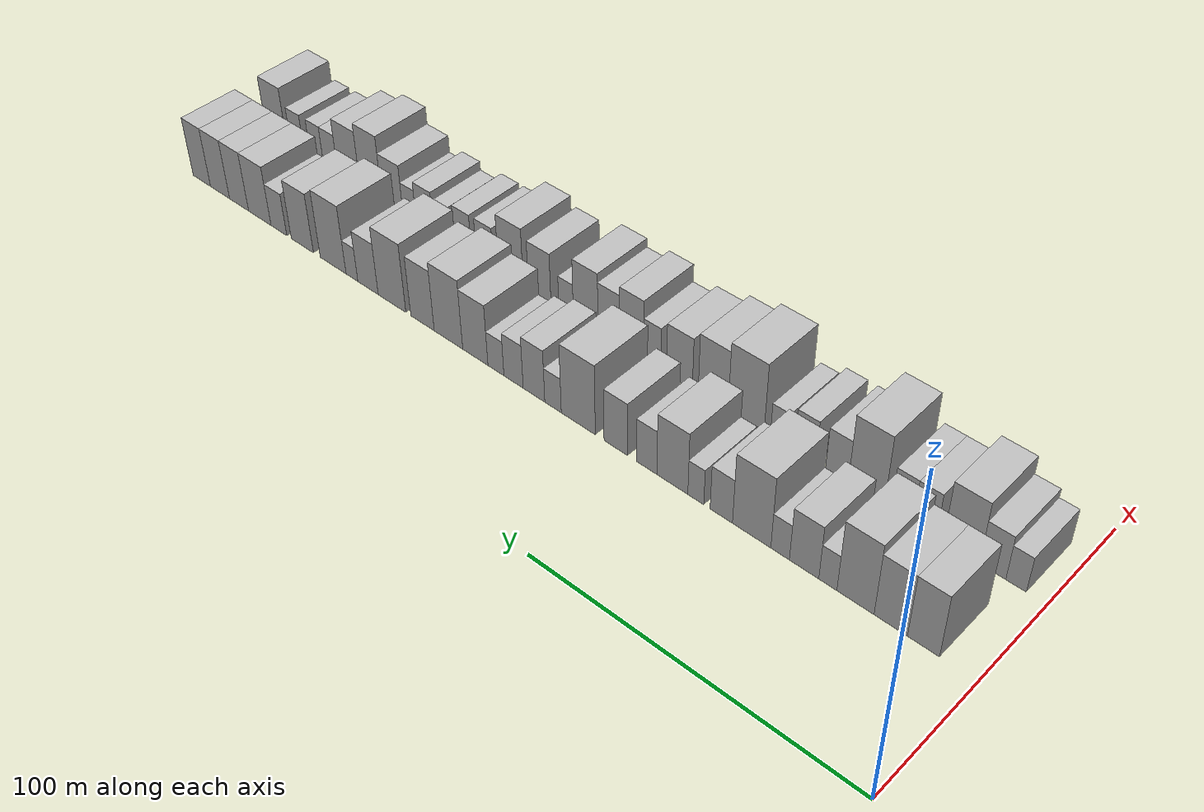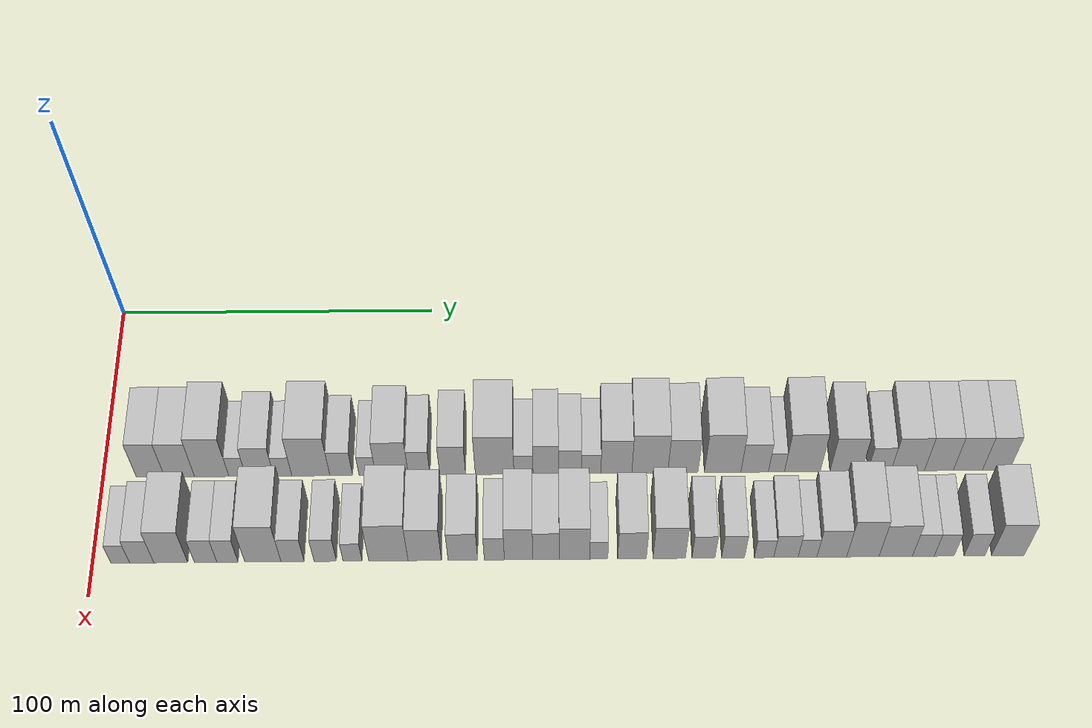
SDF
<sdf version="1.6">
 <world name="default">
  <model name="building_35">
   <static>1</static>
   <pose>50.0000 14.6316 0 0.000000 0.000000 0.000000</pose>
   <link name="link">
    <pose>0 0 10.50 0 0 0</pose>
    <collision name="collision"><geometry><box><size>20.0000 8.7028 21.0000</size></box></geometry></collision>
    <visual name="visual">
     <cast_shadows>0</cast_shadows>
     <geometry><box><size>20.0000 8.7028 21.0000</size></box></geometry>
     <material>
      <script>
       <uri>model://HANNAS_wall/materials/scripts</uri>
       <uri>model://HANNAS_wall/materials/textures</uri>
       <name>vrc/HANNAS_wall</name>
      </script>
     </material>
    </visual>
   </link>
  </model>
  <model name="building_36">
   <static>1</static>
   <pose>50.0000 23.6154 0 0.000000 0.000000 0.000000</pose>
   <link name="link">
    <pose>0 0 10.50 0 0 0</pose>
    <collision name="collision"><geometry><box><size>20.0000 9.2649 21.0000</size></box></geometry></collision>
    <visual name="visual">
     <cast_shadows>0</cast_shadows>
     <geometry><box><size>20.0000 9.2649 21.0000</size></box></geometry>
     <material>
      <script>
       <uri>model://HANNAS_wall/materials/scripts</uri>
       <uri>model://HANNAS_wall/materials/textures</uri>
       <name>vrc/HANNAS_wall</name>
      </script>
     </material>
    </visual>
   </link>
  </model>
  <model name="building_37">
   <static>1</static>
   <pose>50.0000 33.5386 0 0.000000 0.000000 0.000000</pose>
   <link name="link">
    <pose>0 0 12.00 0 0 0</pose>
    <collision name="collision"><geometry><box><size>20.0000 10.5815 24.0000</size></box></geometry></collision>
    <visual name="visual">
     <cast_shadows>0</cast_shadows>
     <geometry><box><size>20.0000 10.5815 24.0000</size></box></geometry>
     <material>
      <script>
       <uri>model://HANNAS_wall/materials/scripts</uri>
       <uri>model://HANNAS_wall/materials/textures</uri>
       <name>vrc/HANNAS_wall</name>
      </script>
     </material>
    </visual>
   </link>
  </model>
  <model name="building_38">
   <static>1</static>
   <pose>50.0000 41.4496 0 0.000000 0.000000 0.000000</pose>
   <link name="link">
    <pose>0 0 6.00 0 0 0</pose>
    <collision name="collision"><geometry><box><size>20.0000 5.2403 12.0000</size></box></geometry></collision>
    <visual name="visual">
     <cast_shadows>0</cast_shadows>
     <geometry><box><size>20.0000 5.2403 12.0000</size></box></geometry>
     <material>
      <script>
       <uri>model://HANNAS_wall/materials/scripts</uri>
       <uri>model://HANNAS_wall/materials/textures</uri>
       <name>vrc/HANNAS_wall</name>
      </script>
     </material>
    </visual>
   </link>
  </model>
  <model name="building_39">
   <static>1</static>
   <pose>50.0000 48.4071 0 0.000000 0.000000 0.000000</pose>
   <link name="link">
    <pose>0 0 9.00 0 0 0</pose>
    <collision name="collision"><geometry><box><size>20.0000 8.6749 18.0000</size></box></geometry></collision>
    <visual name="visual">
     <cast_shadows>0</cast_shadows>
     <geometry><box><size>20.0000 8.6749 18.0000</size></box></geometry>
     <material>
      <script>
       <uri>model://HANNAS_wall/materials/scripts</uri>
       <uri>model://HANNAS_wall/materials/textures</uri>
       <name>vrc/HANNAS_wall</name>
      </script>
     </material>
    </visual>
   </link>
  </model>
  <model name="building_40">
   <static>1</static>
   <pose>50.0000 55.5318 0 0.000000 0.000000 0.000000</pose>
   <link name="link">
    <pose>0 0 6.00 0 0 0</pose>
    <collision name="collision"><geometry><box><size>20.0000 5.5745 12.0000</size></box></geometry></collision>
    <visual name="visual">
     <cast_shadows>0</cast_shadows>
     <geometry><box><size>20.0000 5.5745 12.0000</size></box></geometry>
     <material>
      <script>
       <uri>model://HANNAS_wall/materials/scripts</uri>
       <uri>model://HANNAS_wall/materials/textures</uri>
       <name>vrc/HANNAS_wall</name>
      </script>
     </material>
    </visual>
   </link>
  </model>
  <model name="building_41">
   <static>1</static>
   <pose>50.0000 64.1976 0 0.000000 0.000000 0.000000</pose>
   <link name="link">
    <pose>0 0 12.00 0 0 0</pose>
    <collision name="collision"><geometry><box><size>20.0000 11.7571 24.0000</size></box></geometry></collision>
    <visual name="visual">
     <cast_shadows>0</cast_shadows>
     <geometry><box><size>20.0000 11.7571 24.0000</size></box></geometry>
     <material>
      <script>
       <uri>model://HANNAS_wall/materials/scripts</uri>
       <uri>model://HANNAS_wall/materials/textures</uri>
       <name>vrc/HANNAS_wall</name>
      </script>
     </material>
    </visual>
   </link>
  </model>
  <model name="building_42">
   <static>1</static>
   <pose>50.0000 73.5906 0 0.000000 0.000000 0.000000</pose>
   <link name="link">
    <pose>0 0 7.50 0 0 0</pose>
    <collision name="collision"><geometry><box><size>20.0000 7.0291 15.0000</size></box></geometry></collision>
    <visual name="visual">
     <cast_shadows>0</cast_shadows>
     <geometry><box><size>20.0000 7.0291 15.0000</size></box></geometry>
     <material>
      <script>
       <uri>model://HANNAS_wall/materials/scripts</uri>
       <uri>model://HANNAS_wall/materials/textures</uri>
       <name>vrc/HANNAS_wall</name>
      </script>
     </material>
    </visual>
   </link>
  </model>
  <model name="building_43">
   <static>1</static>
   <pose>50.0000 81.6611 0 0.000000 0.000000 0.000000</pose>
   <link name="link">
    <pose>0 0 6.00 0 0 0</pose>
    <collision name="collision"><geometry><box><size>20.0000 5.1118 12.0000</size></box></geometry></collision>
    <visual name="visual">
     <cast_shadows>0</cast_shadows>
     <geometry><box><size>20.0000 5.1118 12.0000</size></box></geometry>
     <material>
      <script>
       <uri>model://HANNAS_wall/materials/scripts</uri>
       <uri>model://HANNAS_wall/materials/textures</uri>
       <name>vrc/HANNAS_wall</name>
      </script>
     </material>
    </visual>
   </link>
  </model>
  <model name="building_44">
   <static>1</static>
   <pose>50.0000 89.2601 0 0.000000 0.000000 0.000000</pose>
   <link name="link">
    <pose>0 0 10.50 0 0 0</pose>
    <collision name="collision"><geometry><box><size>20.0000 10.0862 21.0000</size></box></geometry></collision>
    <visual name="visual">
     <cast_shadows>0</cast_shadows>
     <geometry><box><size>20.0000 10.0862 21.0000</size></box></geometry>
     <material>
      <script>
       <uri>model://HANNAS_wall/materials/scripts</uri>
       <uri>model://HANNAS_wall/materials/textures</uri>
       <name>vrc/HANNAS_wall</name>
      </script>
     </material>
    </visual>
   </link>
  </model>
  <model name="building_45">
   <static>1</static>
   <pose>50.0000 97.6707 0 0.000000 0.000000 0.000000</pose>
   <link name="link">
    <pose>0 0 7.50 0 0 0</pose>
    <collision name="collision"><geometry><box><size>20.0000 6.7349 15.0000</size></box></geometry></collision>
    <visual name="visual">
     <cast_shadows>0</cast_shadows>
     <geometry><box><size>20.0000 6.7349 15.0000</size></box></geometry>
     <material>
      <script>
       <uri>model://HANNAS_wall/materials/scripts</uri>
       <uri>model://HANNAS_wall/materials/textures</uri>
       <name>vrc/HANNAS_wall</name>
      </script>
     </material>
    </visual>
   </link>
  </model>
  <model name="building_46">
   <static>1</static>
   <pose>50.0000 108.0494 0 0.000000 0.000000 0.000000</pose>
   <link name="link">
    <pose>0 0 9.00 0 0 0</pose>
    <collision name="collision"><geometry><box><size>20.0000 8.0226 18.0000</size></box></geometry></collision>
    <visual name="visual">
     <cast_shadows>0</cast_shadows>
     <geometry><box><size>20.0000 8.0226 18.0000</size></box></geometry>
     <material>
      <script>
       <uri>model://HANNAS_wall/materials/scripts</uri>
       <uri>model://HANNAS_wall/materials/textures</uri>
       <name>vrc/HANNAS_wall</name>
      </script>
     </material>
    </visual>
   </link>
  </model>
  <model name="building_47">
   <static>1</static>
   <pose>50.0000 121.0334 0 0.000000 0.000000 0.000000</pose>
   <link name="link">
    <pose>0 0 12.00 0 0 0</pose>
    <collision name="collision"><geometry><box><size>20.0000 11.9454 24.0000</size></box></geometry></collision>
    <visual name="visual">
     <cast_shadows>0</cast_shadows>
     <geometry><box><size>20.0000 11.9454 24.0000</size></box></geometry>
     <material>
      <script>
       <uri>model://HANNAS_wall/materials/scripts</uri>
       <uri>model://HANNAS_wall/materials/textures</uri>
       <name>vrc/HANNAS_wall</name>
      </script>
     </material>
    </visual>
   </link>
  </model>
  <model name="building_48">
   <static>1</static>
   <pose>50.0000 129.9564 0 0.000000 0.000000 0.000000</pose>
   <link name="link">
    <pose>0 0 6.00 0 0 0</pose>
    <collision name="collision"><geometry><box><size>20.0000 5.9007 12.0000</size></box></geometry></collision>
    <visual name="visual">
     <cast_shadows>0</cast_shadows>
     <geometry><box><size>20.0000 5.9007 12.0000</size></box></geometry>
     <material>
      <script>
       <uri>model://HANNAS_wall/materials/scripts</uri>
       <uri>model://HANNAS_wall/materials/textures</uri>
       <name>vrc/HANNAS_wall</name>
      </script>
     </material>
    </visual>
   </link>
  </model>
  <model name="building_49">
   <static>1</static>
   <pose>50.0000 136.8345 0 0.000000 0.000000 0.000000</pose>
   <link name="link">
    <pose>0 0 9.00 0 0 0</pose>
    <collision name="collision"><geometry><box><size>20.0000 7.8554 18.0000</size></box></geometry></collision>
    <visual name="visual">
     <cast_shadows>0</cast_shadows>
     <geometry><box><size>20.0000 7.8554 18.0000</size></box></geometry>
     <material>
      <script>
       <uri>model://HANNAS_wall/materials/scripts</uri>
       <uri>model://HANNAS_wall/materials/textures</uri>
       <name>vrc/HANNAS_wall</name>
      </script>
     </material>
    </visual>
   </link>
  </model>
  <model name="building_50">
   <static>1</static>
   <pose>50.0000 144.3161 0 0.000000 0.000000 0.000000</pose>
   <link name="link">
    <pose>0 0 7.50 0 0 0</pose>
    <collision name="collision"><geometry><box><size>20.0000 7.1079 15.0000</size></box></geometry></collision>
    <visual name="visual">
     <cast_shadows>0</cast_shadows>
     <geometry><box><size>20.0000 7.1079 15.0000</size></box></geometry>
     <material>
      <script>
       <uri>model://HANNAS_wall/materials/scripts</uri>
       <uri>model://HANNAS_wall/materials/textures</uri>
       <name>vrc/HANNAS_wall</name>
      </script>
     </material>
    </visual>
   </link>
  </model>
  <model name="building_51">
   <static>1</static>
   <pose>50.0000 150.8622 0 0.000000 0.000000 0.000000</pose>
   <link name="link">
    <pose>0 0 6.00 0 0 0</pose>
    <collision name="collision"><geometry><box><size>20.0000 5.9843 12.0000</size></box></geometry></collision>
    <visual name="visual">
     <cast_shadows>0</cast_shadows>
     <geometry><box><size>20.0000 5.9843 12.0000</size></box></geometry>
     <material>
      <script>
       <uri>model://HANNAS_wall/materials/scripts</uri>
       <uri>model://HANNAS_wall/materials/textures</uri>
       <name>vrc/HANNAS_wall</name>
      </script>
     </material>
    </visual>
   </link>
  </model>
  <model name="building_52">
   <static>1</static>
   <pose>50.0000 158.6646 0 0.000000 0.000000 0.000000</pose>
   <link name="link">
    <pose>0 0 10.50 0 0 0</pose>
    <collision name="collision"><geometry><box><size>20.0000 9.6206 21.0000</size></box></geometry></collision>
    <visual name="visual">
     <cast_shadows>0</cast_shadows>
     <geometry><box><size>20.0000 9.6206 21.0000</size></box></geometry>
     <material>
      <script>
       <uri>model://HANNAS_wall/materials/scripts</uri>
       <uri>model://HANNAS_wall/materials/textures</uri>
       <name>vrc/HANNAS_wall</name>
      </script>
     </material>
    </visual>
   </link>
  </model>
  <model name="building_53">
   <static>1</static>
   <pose>50.0000 169.0447 0 0.000000 0.000000 0.000000</pose>
   <link name="link">
    <pose>0 0 12.00 0 0 0</pose>
    <collision name="collision"><geometry><box><size>20.0000 11.1397 24.0000</size></box></geometry></collision>
    <visual name="visual">
     <cast_shadows>0</cast_shadows>
     <geometry><box><size>20.0000 11.1397 24.0000</size></box></geometry>
     <material>
      <script>
       <uri>model://HANNAS_wall/materials/scripts</uri>
       <uri>model://HANNAS_wall/materials/textures</uri>
       <name>vrc/HANNAS_wall</name>
      </script>
     </material>
    </visual>
   </link>
  </model>
  <model name="building_54">
   <static>1</static>
   <pose>50.0000 179.2855 0 0.000000 0.000000 0.000000</pose>
   <link name="link">
    <pose>0 0 10.50 0 0 0</pose>
    <collision name="collision"><geometry><box><size>20.0000 9.3417 21.0000</size></box></geometry></collision>
    <visual name="visual">
     <cast_shadows>0</cast_shadows>
     <geometry><box><size>20.0000 9.3417 21.0000</size></box></geometry>
     <material>
      <script>
       <uri>model://HANNAS_wall/materials/scripts</uri>
       <uri>model://HANNAS_wall/materials/textures</uri>
       <name>vrc/HANNAS_wall</name>
      </script>
     </material>
    </visual>
   </link>
  </model>
  <model name="building_55">
   <static>1</static>
   <pose>50.0000 191.6050 0 0.000000 0.000000 0.000000</pose>
   <link name="link">
    <pose>0 0 12.00 0 0 0</pose>
    <collision name="collision"><geometry><box><size>20.0000 11.2973 24.0000</size></box></geometry></collision>
    <visual name="visual">
     <cast_shadows>0</cast_shadows>
     <geometry><box><size>20.0000 11.2973 24.0000</size></box></geometry>
     <material>
      <script>
       <uri>model://HANNAS_wall/materials/scripts</uri>
       <uri>model://HANNAS_wall/materials/textures</uri>
       <name>vrc/HANNAS_wall</name>
      </script>
     </material>
    </visual>
   </link>
  </model>
  <model name="building_56">
   <static>1</static>
   <pose>50.0000 201.5154 0 0.000000 0.000000 0.000000</pose>
   <link name="link">
    <pose>0 0 9.00 0 0 0</pose>
    <collision name="collision"><geometry><box><size>20.0000 8.5236 18.0000</size></box></geometry></collision>
    <visual name="visual">
     <cast_shadows>0</cast_shadows>
     <geometry><box><size>20.0000 8.5236 18.0000</size></box></geometry>
     <material>
      <script>
       <uri>model://HANNAS_wall/materials/scripts</uri>
       <uri>model://HANNAS_wall/materials/textures</uri>
       <name>vrc/HANNAS_wall</name>
      </script>
     </material>
    </visual>
   </link>
  </model>
  <model name="building_57">
   <static>1</static>
   <pose>50.0000 208.2696 0 0.000000 0.000000 0.000000</pose>
   <link name="link">
    <pose>0 0 6.00 0 0 0</pose>
    <collision name="collision"><geometry><box><size>20.0000 4.9847 12.0000</size></box></geometry></collision>
    <visual name="visual">
     <cast_shadows>0</cast_shadows>
     <geometry><box><size>20.0000 4.9847 12.0000</size></box></geometry>
     <material>
      <script>
       <uri>model://HANNAS_wall/materials/scripts</uri>
       <uri>model://HANNAS_wall/materials/textures</uri>
       <name>vrc/HANNAS_wall</name>
      </script>
     </material>
    </visual>
   </link>
  </model>
  <model name="building_58">
   <static>1</static>
   <pose>50.0000 216.3229 0 0.000000 0.000000 0.000000</pose>
   <link name="link">
    <pose>0 0 12.00 0 0 0</pose>
    <collision name="collision"><geometry><box><size>20.0000 11.1220 24.0000</size></box></geometry></collision>
    <visual name="visual">
     <cast_shadows>0</cast_shadows>
     <geometry><box><size>20.0000 11.1220 24.0000</size></box></geometry>
     <material>
      <script>
       <uri>model://HANNAS_wall/materials/scripts</uri>
       <uri>model://HANNAS_wall/materials/textures</uri>
       <name>vrc/HANNAS_wall</name>
      </script>
     </material>
    </visual>
   </link>
  </model>
  <model name="building_59">
   <static>1</static>
   <pose>50.0000 229.7855 0 0.000000 0.000000 0.000000</pose>
   <link name="link">
    <pose>0 0 10.50 0 0 0</pose>
    <collision name="collision"><geometry><box><size>20.0000 9.8032 21.0000</size></box></geometry></collision>
    <visual name="visual">
     <cast_shadows>0</cast_shadows>
     <geometry><box><size>20.0000 9.8032 21.0000</size></box></geometry>
     <material>
      <script>
       <uri>model://HANNAS_wall/materials/scripts</uri>
       <uri>model://HANNAS_wall/materials/textures</uri>
       <name>vrc/HANNAS_wall</name>
      </script>
     </material>
    </visual>
   </link>
  </model>
  <model name="building_60">
   <static>1</static>
   <pose>50.0000 240.2596 0 0.000000 0.000000 0.000000</pose>
   <link name="link">
    <pose>0 0 7.50 0 0 0</pose>
    <collision name="collision"><geometry><box><size>20.0000 7.1451 15.0000</size></box></geometry></collision>
    <visual name="visual">
     <cast_shadows>0</cast_shadows>
     <geometry><box><size>20.0000 7.1451 15.0000</size></box></geometry>
     <material>
      <script>
       <uri>model://HANNAS_wall/materials/scripts</uri>
       <uri>model://HANNAS_wall/materials/textures</uri>
       <name>vrc/HANNAS_wall</name>
      </script>
     </material>
    </visual>
   </link>
  </model>
  <model name="building_61">
   <static>1</static>
   <pose>50.0000 249.0057 0 0.000000 0.000000 0.000000</pose>
   <link name="link">
    <pose>0 0 10.50 0 0 0</pose>
    <collision name="collision"><geometry><box><size>20.0000 10.3470 21.0000</size></box></geometry></collision>
    <visual name="visual">
     <cast_shadows>0</cast_shadows>
     <geometry><box><size>20.0000 10.3470 21.0000</size></box></geometry>
     <material>
      <script>
       <uri>model://HANNAS_wall/materials/scripts</uri>
       <uri>model://HANNAS_wall/materials/textures</uri>
       <name>vrc/HANNAS_wall</name>
      </script>
     </material>
    </visual>
   </link>
  </model>
  <model name="building_62">
   <static>1</static>
   <pose>50.0000 258.6592 0 0.000000 0.000000 0.000000</pose>
   <link name="link">
    <pose>0 0 10.50 0 0 0</pose>
    <collision name="collision"><geometry><box><size>20.0000 8.9600 21.0000</size></box></geometry></collision>
    <visual name="visual">
     <cast_shadows>0</cast_shadows>
     <geometry><box><size>20.0000 8.9600 21.0000</size></box></geometry>
     <material>
      <script>
       <uri>model://HANNAS_wall/materials/scripts</uri>
       <uri>model://HANNAS_wall/materials/textures</uri>
       <name>vrc/HANNAS_wall</name>
      </script>
     </material>
    </visual>
   </link>
  </model>
  <model name="building_63">
   <static>1</static>
   <pose>50.0000 267.6612 0 0.000000 0.000000 0.000000</pose>
   <link name="link">
    <pose>0 0 10.50 0 0 0</pose>
    <collision name="collision"><geometry><box><size>20.0000 9.0440 21.0000</size></box></geometry></collision>
    <visual name="visual">
     <cast_shadows>0</cast_shadows>
     <geometry><box><size>20.0000 9.0440 21.0000</size></box></geometry>
     <material>
      <script>
       <uri>model://HANNAS_wall/materials/scripts</uri>
       <uri>model://HANNAS_wall/materials/textures</uri>
       <name>vrc/HANNAS_wall</name>
      </script>
     </material>
    </visual>
   </link>
  </model>
  <model name="building_64">
   <static>1</static>
   <pose>50.0000 276.3855 0 0.000000 0.000000 0.000000</pose>
   <link name="link">
    <pose>0 0 10.50 0 0 0</pose>
    <collision name="collision"><geometry><box><size>20.0000 8.4046 21.0000</size></box></geometry></collision>
    <visual name="visual">
     <cast_shadows>0</cast_shadows>
     <geometry><box><size>20.0000 8.4046 21.0000</size></box></geometry>
     <material>
      <script>
       <uri>model://HANNAS_wall/materials/scripts</uri>
       <uri>model://HANNAS_wall/materials/textures</uri>
       <name>vrc/HANNAS_wall</name>
      </script>
     </material>
    </visual>
   </link>
  </model>
  <model name="building_92">
   <static>1</static>
   <pose>79.0000 8.4908 0 0.000000 0.000000 0.000000</pose>
   <link name="link">
    <pose>0 0 6.00 0 0 0</pose>
    <collision name="collision"><geometry><box><size>20.0000 5.6052 12.0000</size></box></geometry></collision>
    <visual name="visual">
     <cast_shadows>0</cast_shadows>
     <geometry><box><size>20.0000 5.6052 12.0000</size></box></geometry>
     <material>
      <script>
       <uri>model://HANNAS_wall/materials/scripts</uri>
       <uri>model://HANNAS_wall/materials/textures</uri>
       <name>vrc/HANNAS_wall</name>
      </script>
     </material>
    </visual>
   </link>
  </model>
  <model name="building_93">
   <static>1</static>
   <pose>79.0000 14.9302 0 0.000000 0.000000 0.000000</pose>
   <link name="link">
    <pose>0 0 7.50 0 0 0</pose>
    <collision name="collision"><geometry><box><size>20.0000 7.2737 15.0000</size></box></geometry></collision>
    <visual name="visual">
     <cast_shadows>0</cast_shadows>
     <geometry><box><size>20.0000 7.2737 15.0000</size></box></geometry>
     <material>
      <script>
       <uri>model://HANNAS_wall/materials/scripts</uri>
       <uri>model://HANNAS_wall/materials/textures</uri>
       <name>vrc/HANNAS_wall</name>
      </script>
     </material>
    </visual>
   </link>
  </model>
  <model name="building_94">
   <static>1</static>
   <pose>79.0000 23.6726 0 0.000000 0.000000 0.000000</pose>
   <link name="link">
    <pose>0 0 10.50 0 0 0</pose>
    <collision name="collision"><geometry><box><size>20.0000 10.2110 21.0000</size></box></geometry></collision>
    <visual name="visual">
     <cast_shadows>0</cast_shadows>
     <geometry><box><size>20.0000 10.2110 21.0000</size></box></geometry>
     <material>
      <script>
       <uri>model://HANNAS_wall/materials/scripts</uri>
       <uri>model://HANNAS_wall/materials/textures</uri>
       <name>vrc/HANNAS_wall</name>
      </script>
     </material>
    </visual>
   </link>
  </model>
  <model name="building_95">
   <static>1</static>
   <pose>79.0000 34.1572 0 0.000000 0.000000 0.000000</pose>
   <link name="link">
    <pose>0 0 7.50 0 0 0</pose>
    <collision name="collision"><geometry><box><size>20.0000 6.7583 15.0000</size></box></geometry></collision>
    <visual name="visual">
     <cast_shadows>0</cast_shadows>
     <geometry><box><size>20.0000 6.7583 15.0000</size></box></geometry>
     <material>
      <script>
       <uri>model://HANNAS_wall/materials/scripts</uri>
       <uri>model://HANNAS_wall/materials/textures</uri>
       <name>vrc/HANNAS_wall</name>
      </script>
     </material>
    </visual>
   </link>
  </model>
  <model name="building_96">
   <static>1</static>
   <pose>79.0000 40.7348 0 0.000000 0.000000 0.000000</pose>
   <link name="link">
    <pose>0 0 7.50 0 0 0</pose>
    <collision name="collision"><geometry><box><size>20.0000 6.3968 15.0000</size></box></geometry></collision>
    <visual name="visual">
     <cast_shadows>0</cast_shadows>
     <geometry><box><size>20.0000 6.3968 15.0000</size></box></geometry>
     <material>
      <script>
       <uri>model://HANNAS_wall/materials/scripts</uri>
       <uri>model://HANNAS_wall/materials/textures</uri>
       <name>vrc/HANNAS_wall</name>
      </script>
     </material>
    </visual>
   </link>
  </model>
  <model name="building_97">
   <static>1</static>
   <pose>79.0000 51.3999 0 0.000000 0.000000 0.000000</pose>
   <link name="link">
    <pose>0 0 12.00 0 0 0</pose>
    <collision name="collision"><geometry><box><size>20.0000 10.9334 24.0000</size></box></geometry></collision>
    <visual name="visual">
     <cast_shadows>0</cast_shadows>
     <geometry><box><size>20.0000 10.9334 24.0000</size></box></geometry>
     <material>
      <script>
       <uri>model://HANNAS_wall/materials/scripts</uri>
       <uri>model://HANNAS_wall/materials/textures</uri>
       <name>vrc/HANNAS_wall</name>
      </script>
     </material>
    </visual>
   </link>
  </model>
  <model name="building_98">
   <static>1</static>
   <pose>79.0000 60.3516 0 0.000000 0.000000 0.000000</pose>
   <link name="link">
    <pose>0 0 7.50 0 0 0</pose>
    <collision name="collision"><geometry><box><size>20.0000 6.9698 15.0000</size></box></geometry></collision>
    <visual name="visual">
     <cast_shadows>0</cast_shadows>
     <geometry><box><size>20.0000 6.9698 15.0000</size></box></geometry>
     <material>
      <script>
       <uri>model://HANNAS_wall/materials/scripts</uri>
       <uri>model://HANNAS_wall/materials/textures</uri>
       <name>vrc/HANNAS_wall</name>
      </script>
     </material>
    </visual>
   </link>
  </model>
  <model name="building_99">
   <static>1</static>
   <pose>79.0000 70.1922 0 0.000000 0.000000 0.000000</pose>
   <link name="link">
    <pose>0 0 7.50 0 0 0</pose>
    <collision name="collision"><geometry><box><size>20.0000 6.7116 15.0000</size></box></geometry></collision>
    <visual name="visual">
     <cast_shadows>0</cast_shadows>
     <geometry><box><size>20.0000 6.7116 15.0000</size></box></geometry>
     <material>
      <script>
       <uri>model://HANNAS_wall/materials/scripts</uri>
       <uri>model://HANNAS_wall/materials/textures</uri>
       <name>vrc/HANNAS_wall</name>
      </script>
     </material>
    </visual>
   </link>
  </model>
  <model name="building_100">
   <static>1</static>
   <pose>79.0000 78.4178 0 0.000000 0.000000 0.000000</pose>
   <link name="link">
    <pose>0 0 6.00 0 0 0</pose>
    <collision name="collision"><geometry><box><size>20.0000 5.7395 12.0000</size></box></geometry></collision>
    <visual name="visual">
     <cast_shadows>0</cast_shadows>
     <geometry><box><size>20.0000 5.7395 12.0000</size></box></geometry>
     <material>
      <script>
       <uri>model://HANNAS_wall/materials/scripts</uri>
       <uri>model://HANNAS_wall/materials/textures</uri>
       <name>vrc/HANNAS_wall</name>
      </script>
     </material>
    </visual>
   </link>
  </model>
  <model name="building_101">
   <static>1</static>
   <pose>79.0000 89.2218 0 0.000000 0.000000 0.000000</pose>
   <link name="link">
    <pose>0 0 12.00 0 0 0</pose>
    <collision name="collision"><geometry><box><size>20.0000 11.8686 24.0000</size></box></geometry></collision>
    <visual name="visual">
     <cast_shadows>0</cast_shadows>
     <geometry><box><size>20.0000 11.8686 24.0000</size></box></geometry>
     <material>
      <script>
       <uri>model://HANNAS_wall/materials/scripts</uri>
       <uri>model://HANNAS_wall/materials/textures</uri>
       <name>vrc/HANNAS_wall</name>
      </script>
     </material>
    </visual>
   </link>
  </model>
  <model name="building_102">
   <static>1</static>
   <pose>79.0000 100.1863 0 0.000000 0.000000 0.000000</pose>
   <link name="link">
    <pose>0 0 10.50 0 0 0</pose>
    <collision name="collision"><geometry><box><size>20.0000 10.0603 21.0000</size></box></geometry></collision>
    <visual name="visual">
     <cast_shadows>0</cast_shadows>
     <geometry><box><size>20.0000 10.0603 21.0000</size></box></geometry>
     <material>
      <script>
       <uri>model://HANNAS_wall/materials/scripts</uri>
       <uri>model://HANNAS_wall/materials/textures</uri>
       <name>vrc/HANNAS_wall</name>
      </script>
     </material>
    </visual>
   </link>
  </model>
  <model name="building_103">
   <static>1</static>
   <pose>79.0000 111.6802 0 0.000000 0.000000 0.000000</pose>
   <link name="link">
    <pose>0 0 9.00 0 0 0</pose>
    <collision name="collision"><geometry><box><size>20.0000 8.9275 18.0000</size></box></geometry></collision>
    <visual name="visual">
     <cast_shadows>0</cast_shadows>
     <geometry><box><size>20.0000 8.9275 18.0000</size></box></geometry>
     <material>
      <script>
       <uri>model://HANNAS_wall/materials/scripts</uri>
       <uri>model://HANNAS_wall/materials/textures</uri>
       <name>vrc/HANNAS_wall</name>
      </script>
     </material>
    </visual>
   </link>
  </model>
  <model name="building_104">
   <static>1</static>
   <pose>79.0000 121.1750 0 0.000000 0.000000 0.000000</pose>
   <link name="link">
    <pose>0 0 7.50 0 0 0</pose>
    <collision name="collision"><geometry><box><size>20.0000 6.0622 15.0000</size></box></geometry></collision>
    <visual name="visual">
     <cast_shadows>0</cast_shadows>
     <geometry><box><size>20.0000 6.0622 15.0000</size></box></geometry>
     <material>
      <script>
       <uri>model://HANNAS_wall/materials/scripts</uri>
       <uri>model://HANNAS_wall/materials/textures</uri>
       <name>vrc/HANNAS_wall</name>
      </script>
     </material>
    </visual>
   </link>
  </model>
  <model name="building_105">
   <static>1</static>
   <pose>79.0000 128.4859 0 0.000000 0.000000 0.000000</pose>
   <link name="link">
    <pose>0 0 10.50 0 0 0</pose>
    <collision name="collision"><geometry><box><size>20.0000 8.5597 21.0000</size></box></geometry></collision>
    <visual name="visual">
     <cast_shadows>0</cast_shadows>
     <geometry><box><size>20.0000 8.5597 21.0000</size></box></geometry>
     <material>
      <script>
       <uri>model://HANNAS_wall/materials/scripts</uri>
       <uri>model://HANNAS_wall/materials/textures</uri>
       <name>vrc/HANNAS_wall</name>
      </script>
     </material>
    </visual>
   </link>
  </model>
  <model name="building_106">
   <static>1</static>
   <pose>79.0000 136.7175 0 0.000000 0.000000 0.000000</pose>
   <link name="link">
    <pose>0 0 9.00 0 0 0</pose>
    <collision name="collision"><geometry><box><size>20.0000 7.9034 18.0000</size></box></geometry></collision>
    <visual name="visual">
     <cast_shadows>0</cast_shadows>
     <geometry><box><size>20.0000 7.9034 18.0000</size></box></geometry>
     <material>
      <script>
       <uri>model://HANNAS_wall/materials/scripts</uri>
       <uri>model://HANNAS_wall/materials/textures</uri>
       <name>vrc/HANNAS_wall</name>
      </script>
     </material>
    </visual>
   </link>
  </model>
  <model name="building_107">
   <static>1</static>
   <pose>79.0000 145.2664 0 0.000000 0.000000 0.000000</pose>
   <link name="link">
    <pose>0 0 10.50 0 0 0</pose>
    <collision name="collision"><geometry><box><size>20.0000 9.1945 21.0000</size></box></geometry></collision>
    <visual name="visual">
     <cast_shadows>0</cast_shadows>
     <geometry><box><size>20.0000 9.1945 21.0000</size></box></geometry>
     <material>
      <script>
       <uri>model://HANNAS_wall/materials/scripts</uri>
       <uri>model://HANNAS_wall/materials/textures</uri>
       <name>vrc/HANNAS_wall</name>
      </script>
     </material>
    </visual>
   </link>
  </model>
  <model name="building_108">
   <static>1</static>
   <pose>79.0000 152.6156 0 0.000000 0.000000 0.000000</pose>
   <link name="link">
    <pose>0 0 6.00 0 0 0</pose>
    <collision name="collision"><geometry><box><size>20.0000 5.5038 12.0000</size></box></geometry></collision>
    <visual name="visual">
     <cast_shadows>0</cast_shadows>
     <geometry><box><size>20.0000 5.5038 12.0000</size></box></geometry>
     <material>
      <script>
       <uri>model://HANNAS_wall/materials/scripts</uri>
       <uri>model://HANNAS_wall/materials/textures</uri>
       <name>vrc/HANNAS_wall</name>
      </script>
     </material>
    </visual>
   </link>
  </model>
  <model name="building_109">
   <static>1</static>
   <pose>79.0000 162.6895 0 0.000000 0.000000 0.000000</pose>
   <link name="link">
    <pose>0 0 9.00 0 0 0</pose>
    <collision name="collision"><geometry><box><size>20.0000 8.6441 18.0000</size></box></geometry></collision>
    <visual name="visual">
     <cast_shadows>0</cast_shadows>
     <geometry><box><size>20.0000 8.6441 18.0000</size></box></geometry>
     <material>
      <script>
       <uri>model://HANNAS_wall/materials/scripts</uri>
       <uri>model://HANNAS_wall/materials/textures</uri>
       <name>vrc/HANNAS_wall</name>
      </script>
     </material>
    </visual>
   </link>
  </model>
  <model name="building_110">
   <static>1</static>
   <pose>79.0000 173.9003 0 0.000000 0.000000 0.000000</pose>
   <link name="link">
    <pose>0 0 10.50 0 0 0</pose>
    <collision name="collision"><geometry><box><size>20.0000 9.7776 21.0000</size></box></geometry></collision>
    <visual name="visual">
     <cast_shadows>0</cast_shadows>
     <geometry><box><size>20.0000 9.7776 21.0000</size></box></geometry>
     <material>
      <script>
       <uri>model://HANNAS_wall/materials/scripts</uri>
       <uri>model://HANNAS_wall/materials/textures</uri>
       <name>vrc/HANNAS_wall</name>
      </script>
     </material>
    </visual>
   </link>
  </model>
  <model name="building_111">
   <static>1</static>
   <pose>79.0000 184.2559 0 0.000000 0.000000 0.000000</pose>
   <link name="link">
    <pose>0 0 7.50 0 0 0</pose>
    <collision name="collision"><geometry><box><size>20.0000 6.9335 15.0000</size></box></geometry></collision>
    <visual name="visual">
     <cast_shadows>0</cast_shadows>
     <geometry><box><size>20.0000 6.9335 15.0000</size></box></geometry>
     <material>
      <script>
       <uri>model://HANNAS_wall/materials/scripts</uri>
       <uri>model://HANNAS_wall/materials/textures</uri>
       <name>vrc/HANNAS_wall</name>
      </script>
     </material>
    </visual>
   </link>
  </model>
  <model name="building_112">
   <static>1</static>
   <pose>79.0000 193.1860 0 0.000000 0.000000 0.000000</pose>
   <link name="link">
    <pose>0 0 7.50 0 0 0</pose>
    <collision name="collision"><geometry><box><size>20.0000 6.9267 15.0000</size></box></geometry></collision>
    <visual name="visual">
     <cast_shadows>0</cast_shadows>
     <geometry><box><size>20.0000 6.9267 15.0000</size></box></geometry>
     <material>
      <script>
       <uri>model://HANNAS_wall/materials/scripts</uri>
       <uri>model://HANNAS_wall/materials/textures</uri>
       <name>vrc/HANNAS_wall</name>
      </script>
     </material>
    </visual>
   </link>
  </model>
  <model name="building_113">
   <static>1</static>
   <pose>79.0000 202.5545 0 0.000000 0.000000 0.000000</pose>
   <link name="link">
    <pose>0 0 6.00 0 0 0</pose>
    <collision name="collision"><geometry><box><size>20.0000 5.8102 12.0000</size></box></geometry></collision>
    <visual name="visual">
     <cast_shadows>0</cast_shadows>
     <geometry><box><size>20.0000 5.8102 12.0000</size></box></geometry>
     <material>
      <script>
       <uri>model://HANNAS_wall/materials/scripts</uri>
       <uri>model://HANNAS_wall/materials/textures</uri>
       <name>vrc/HANNAS_wall</name>
      </script>
     </material>
    </visual>
   </link>
  </model>
  <model name="building_114">
   <static>1</static>
   <pose>79.0000 209.1482 0 0.000000 0.000000 0.000000</pose>
   <link name="link">
    <pose>0 0 7.50 0 0 0</pose>
    <collision name="collision"><geometry><box><size>20.0000 7.3773 15.0000</size></box></geometry></collision>
    <visual name="visual">
     <cast_shadows>0</cast_shadows>
     <geometry><box><size>20.0000 7.3773 15.0000</size></box></geometry>
     <material>
      <script>
       <uri>model://HANNAS_wall/materials/scripts</uri>
       <uri>model://HANNAS_wall/materials/textures</uri>
       <name>vrc/HANNAS_wall</name>
      </script>
     </material>
    </visual>
   </link>
  </model>
  <model name="building_115">
   <static>1</static>
   <pose>79.0000 215.6736 0 0.000000 0.000000 0.000000</pose>
   <link name="link">
    <pose>0 0 6.00 0 0 0</pose>
    <collision name="collision"><geometry><box><size>20.0000 5.6735 12.0000</size></box></geometry></collision>
    <visual name="visual">
     <cast_shadows>0</cast_shadows>
     <geometry><box><size>20.0000 5.6735 12.0000</size></box></geometry>
     <material>
      <script>
       <uri>model://HANNAS_wall/materials/scripts</uri>
       <uri>model://HANNAS_wall/materials/textures</uri>
       <name>vrc/HANNAS_wall</name>
      </script>
     </material>
    </visual>
   </link>
  </model>
  <model name="building_116">
   <static>1</static>
   <pose>79.0000 223.0074 0 0.000000 0.000000 0.000000</pose>
   <link name="link">
    <pose>0 0 9.00 0 0 0</pose>
    <collision name="collision"><geometry><box><size>20.0000 8.9941 18.0000</size></box></geometry></collision>
    <visual name="visual">
     <cast_shadows>0</cast_shadows>
     <geometry><box><size>20.0000 8.9941 18.0000</size></box></geometry>
     <material>
      <script>
       <uri>model://HANNAS_wall/materials/scripts</uri>
       <uri>model://HANNAS_wall/materials/textures</uri>
       <name>vrc/HANNAS_wall</name>
      </script>
     </material>
    </visual>
   </link>
  </model>
  <model name="building_117">
   <static>1</static>
   <pose>79.0000 232.3936 0 0.000000 0.000000 0.000000</pose>
   <link name="link">
    <pose>0 0 12.00 0 0 0</pose>
    <collision name="collision"><geometry><box><size>20.0000 9.7782 24.0000</size></box></geometry></collision>
    <visual name="visual">
     <cast_shadows>0</cast_shadows>
     <geometry><box><size>20.0000 9.7782 24.0000</size></box></geometry>
     <material>
      <script>
       <uri>model://HANNAS_wall/materials/scripts</uri>
       <uri>model://HANNAS_wall/materials/textures</uri>
       <name>vrc/HANNAS_wall</name>
      </script>
     </material>
    </visual>
   </link>
  </model>
  <model name="building_118">
   <static>1</static>
   <pose>79.0000 242.3354 0 0.000000 0.000000 0.000000</pose>
   <link name="link">
    <pose>0 0 10.50 0 0 0</pose>
    <collision name="collision"><geometry><box><size>20.0000 10.1055 21.0000</size></box></geometry></collision>
    <visual name="visual">
     <cast_shadows>0</cast_shadows>
     <geometry><box><size>20.0000 10.1055 21.0000</size></box></geometry>
     <material>
      <script>
       <uri>model://HANNAS_wall/materials/scripts</uri>
       <uri>model://HANNAS_wall/materials/textures</uri>
       <name>vrc/HANNAS_wall</name>
      </script>
     </material>
    </visual>
   </link>
  </model>
  <model name="building_119">
   <static>1</static>
   <pose>79.0000 250.6875 0 0.000000 0.000000 0.000000</pose>
   <link name="link">
    <pose>0 0 7.50 0 0 0</pose>
    <collision name="collision"><geometry><box><size>20.0000 6.5985 15.0000</size></box></geometry></collision>
    <visual name="visual">
     <cast_shadows>0</cast_shadows>
     <geometry><box><size>20.0000 6.5985 15.0000</size></box></geometry>
     <material>
      <script>
       <uri>model://HANNAS_wall/materials/scripts</uri>
       <uri>model://HANNAS_wall/materials/textures</uri>
       <name>vrc/HANNAS_wall</name>
      </script>
     </material>
    </visual>
   </link>
  </model>
  <model name="building_120">
   <static>1</static>
   <pose>79.0000 256.9940 0 0.000000 0.000000 0.000000</pose>
   <link name="link">
    <pose>0 0 7.50 0 0 0</pose>
    <collision name="collision"><geometry><box><size>20.0000 6.0145 15.0000</size></box></geometry></collision>
    <visual name="visual">
     <cast_shadows>0</cast_shadows>
     <geometry><box><size>20.0000 6.0145 15.0000</size></box></geometry>
     <material>
      <script>
       <uri>model://HANNAS_wall/materials/scripts</uri>
       <uri>model://HANNAS_wall/materials/textures</uri>
       <name>vrc/HANNAS_wall</name>
      </script>
     </material>
    </visual>
   </link>
  </model>
  <model name="building_121">
   <static>1</static>
   <pose>79.0000 266.1584 0 0.000000 0.000000 0.000000</pose>
   <link name="link">
    <pose>0 0 7.50 0 0 0</pose>
    <collision name="collision"><geometry><box><size>20.0000 6.3144 15.0000</size></box></geometry></collision>
    <visual name="visual">
     <cast_shadows>0</cast_shadows>
     <geometry><box><size>20.0000 6.3144 15.0000</size></box></geometry>
     <material>
      <script>
       <uri>model://HANNAS_wall/materials/scripts</uri>
       <uri>model://HANNAS_wall/materials/textures</uri>
       <name>vrc/HANNAS_wall</name>
      </script>
     </material>
    </visual>
   </link>
  </model>
  <model name="building_122">
   <static>1</static>
   <pose>79.0000 276.2559 0 0.000000 0.000000 0.000000</pose>
   <link name="link">
    <pose>0 0 10.50 0 0 0</pose>
    <collision name="collision"><geometry><box><size>20.0000 9.8806 21.0000</size></box></geometry></collision>
    <visual name="visual">
     <cast_shadows>0</cast_shadows>
     <geometry><box><size>20.0000 9.8806 21.0000</size></box></geometry>
     <material>
      <script>
       <uri>model://HANNAS_wall/materials/scripts</uri>
       <uri>model://HANNAS_wall/materials/textures</uri>
       <name>vrc/HANNAS_wall</name>
      </script>
     </material>
    </visual>
   </link>
  </model>
 </world>
</sdf>
